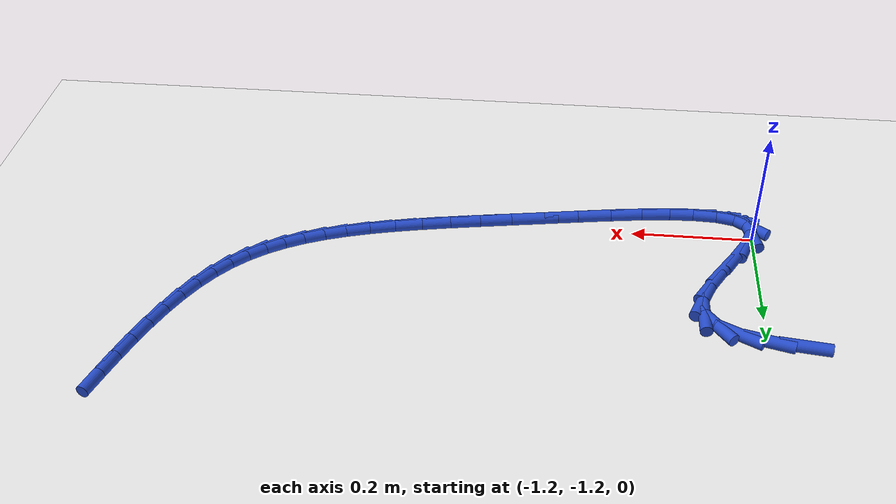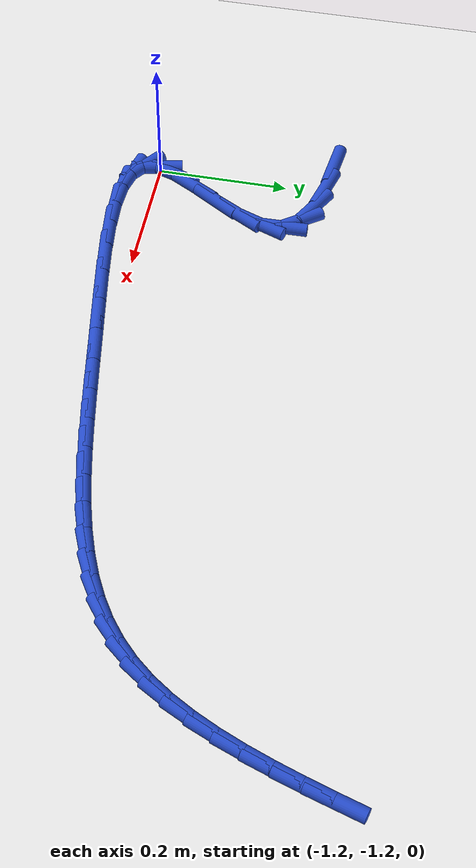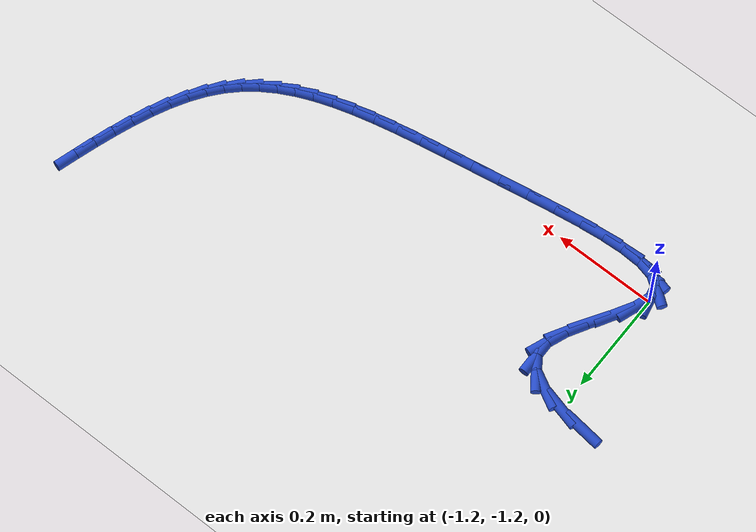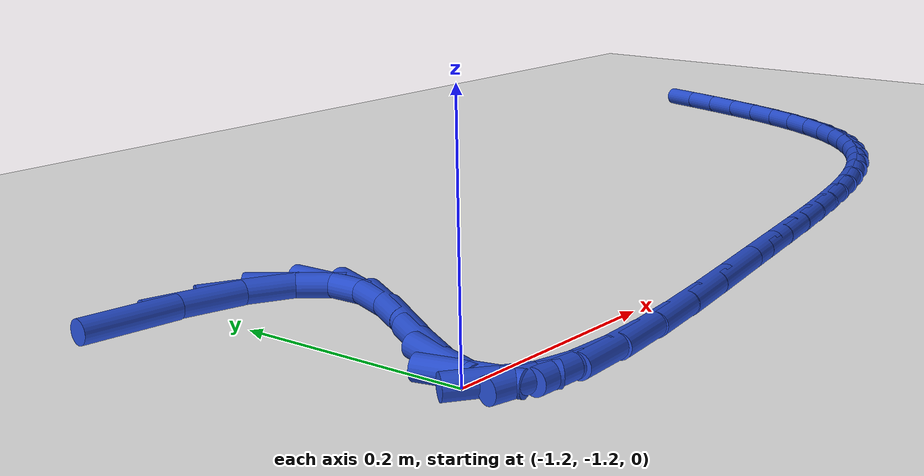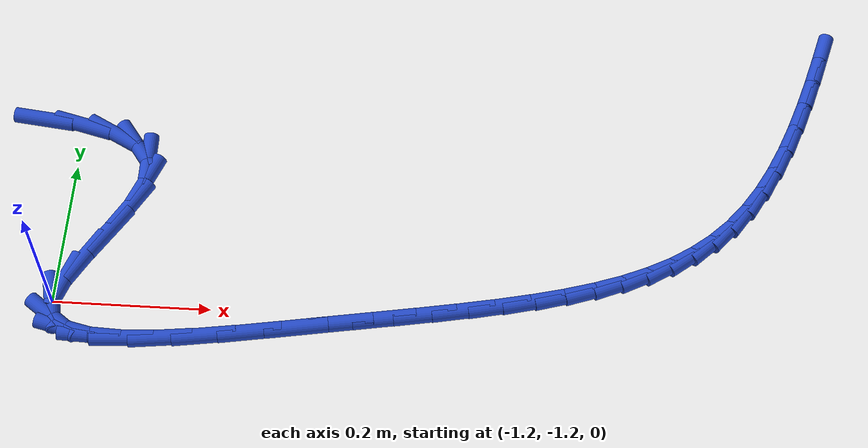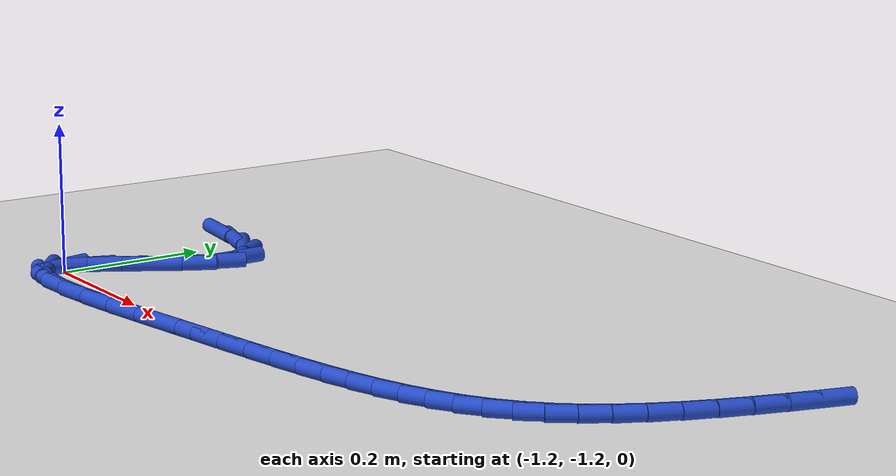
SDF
<sdf version="1.6">
 <world name="default">
  <model name="ground_plane">
   <static>1</static>
   <link name="link">
    <collision name="collision">
     <geometry><plane><normal>0 0 1</normal><size>100 100</size></plane></geometry>
     <surface><friction><ode><mu>100</mu><mu2>50</mu2></ode></friction></surface>
    </collision>
    <visual name="visual">
     <cast_shadows>0</cast_shadows>
     <geometry><plane><normal>0 0 1</normal><size>100 100</size></plane></geometry>
     <material>
      <script><uri>file://media/materials/scripts/gazebo.material</uri><name>Gazebo/WhiteGlow</name></script>
     </material>
    </visual>
   </link>
  </model>
  <model name="line">
   <link name="link_180">
    <pose>-1.2533675629987304 -0.9328533135267145 0.01 0 1.57 -0.12190783928671652</pose>
    <collision name="collision">
     <geometry><cylinder><radius>0.01</radius><length>0.08</length></cylinder></geometry>
    </collision>
    <visual name="visual">
     <material>
      <script><name>Gazebo/Blue</name><uri>file://media/materials/scripts/gazebo.material</uri></script>
     </material>
     <geometry><cylinder><radius>0.01</radius><length>0.08</length></cylinder></geometry>
    </visual>
   </link>
   <link name="link_181">
    <pose>-1.2003027696943875 -0.9393545659417527 0.01 0 1.57 -0.257885889110668</pose>
    <collision name="collision">
     <geometry><cylinder><radius>0.01</radius><length>0.08</length></cylinder></geometry>
    </collision>
    <visual name="visual">
     <material>
      <script><name>Gazebo/Blue</name><uri>file://media/materials/scripts/gazebo.material</uri></script>
     </material>
     <geometry><cylinder><radius>0.01</radius><length>0.08</length></cylinder></geometry>
    </visual>
   </link>
   <link name="link_182">
    <pose>-1.1564744180039892 -0.9509146920826306 0.01 0 1.57 -0.49729702409706683</pose>
    <collision name="collision">
     <geometry><cylinder><radius>0.01</radius><length>0.08</length></cylinder></geometry>
    </collision>
    <visual name="visual">
     <material>
      <script><name>Gazebo/Blue</name><uri>file://media/materials/scripts/gazebo.material</uri></script>
     </material>
     <geometry><cylinder><radius>0.01</radius><length>0.08</length></cylinder></geometry>
    </visual>
   </link>
   <link name="link_183">
    <pose>-1.1245278121155216 -0.9682552454455307 0.01 0 1.57 -0.9398217837265285</pose>
    <collision name="collision">
     <geometry><cylinder><radius>0.01</radius><length>0.08</length></cylinder></geometry>
    </collision>
    <visual name="visual">
     <material>
      <script><name>Gazebo/Blue</name><uri>file://media/materials/scripts/gazebo.material</uri></script>
     </material>
     <geometry><cylinder><radius>0.01</radius><length>0.08</length></cylinder></geometry>
    </visual>
   </link>
   <link name="link_184">
    <pose>-1.107108256216972 -0.9920977795266357 0.01 0 1.57 -1.5532439153242412</pose>
    <collision name="collision">
     <geometry><cylinder><radius>0.01</radius><length>0.08</length></cylinder></geometry>
    </collision>
    <visual name="visual">
     <material>
      <script><name>Gazebo/Blue</name><uri>file://media/materials/scripts/gazebo.material</uri></script>
     </material>
     <geometry><cylinder><radius>0.01</radius><length>0.08</length></cylinder></geometry>
    </visual>
   </link>
   <link name="link_185">
    <pose>-1.106565075965771 -1.0230407909002237 0.01 0 1.57 1.2067231483484882</pose>
    <collision name="collision">
     <geometry><cylinder><radius>0.01</radius><length>0.08</length></cylinder></geometry>
    </collision>
    <visual name="visual">
     <material>
      <script><name>Gazebo/Blue</name><uri>file://media/materials/scripts/gazebo.material</uri></script>
     </material>
     <geometry><cylinder><radius>0.01</radius><length>0.08</length></cylinder></geometry>
    </visual>
   </link>
   <link name="link_186">
    <pose>-1.1205449591974976 -1.0597275933301575 0.01 0 1.57 1.0553229329152607</pose>
    <collision name="collision">
     <geometry><cylinder><radius>0.01</radius><length>0.08</length></cylinder></geometry>
    </collision>
    <visual name="visual">
     <material>
      <script><name>Gazebo/Blue</name><uri>file://media/materials/scripts/gazebo.material</uri></script>
     </material>
     <geometry><cylinder><radius>0.01</radius><length>0.08</length></cylinder></geometry>
    </visual>
   </link>
   <link name="link_187">
    <pose>-1.142929074023011 -1.0992359368016433 0.01 0 1.57 1.0128997740647439</pose>
    <collision name="collision">
     <geometry><cylinder><radius>0.01</radius><length>0.08</length></cylinder></geometry>
    </collision>
    <visual name="visual">
     <material>
      <script><name>Gazebo/Blue</name><uri>file://media/materials/scripts/gazebo.material</uri></script>
     </material>
     <geometry><cylinder><radius>0.01</radius><length>0.08</length></cylinder></geometry>
    </visual>
   </link>
   <link name="link_188">
    <pose>-1.167492940210212 -1.1385996466278363 0.01 0 1.57 1.0557521923404205</pose>
    <collision name="collision">
     <geometry><cylinder><radius>0.01</radius><length>0.08</length></cylinder></geometry>
    </collision>
    <visual name="visual">
     <material>
      <script><name>Gazebo/Blue</name><uri>file://media/materials/scripts/gazebo.material</uri></script>
     </material>
     <geometry><cylinder><radius>0.01</radius><length>0.08</length></cylinder></geometry>
    </visual>
   </link>
   <link name="link_189">
    <pose>-1.1880120775270027 -1.174852548121891 0.01 0 1.57 1.2433510943347075</pose>
    <collision name="collision">
     <geometry><cylinder><radius>0.01</radius><length>0.08</length></cylinder></geometry>
    </collision>
    <visual name="visual">
     <material>
      <script><name>Gazebo/Blue</name><uri>file://media/materials/scripts/gazebo.material</uri></script>
     </material>
     <geometry><cylinder><radius>0.01</radius><length>0.08</length></cylinder></geometry>
    </visual>
   </link>
   <link name="link_190">
    <pose>-1.1982620203315397 -1.2050284736635912 0.01 0 1.57 -1.3571274032091365</pose>
    <collision name="collision">
     <geometry><cylinder><radius>0.01</radius><length>0.08</length></cylinder></geometry>
    </collision>
    <visual name="visual">
     <material>
      <script><name>Gazebo/Blue</name><uri>file://media/materials/scripts/gazebo.material</uri></script>
     </material>
     <geometry><cylinder><radius>0.01</radius><length>0.08</length></cylinder></geometry>
    </visual>
   </link>
   <link name="link_191">
    <pose>-1.19351890497021 -1.2268880555534678 0.01 0 1.57 -0.6400565404599076</pose>
    <collision name="collision">
     <geometry><cylinder><radius>0.01</radius><length>0.08</length></cylinder></geometry>
    </collision>
    <visual name="visual">
     <material>
      <script><name>Gazebo/Blue</name><uri>file://media/materials/scripts/gazebo.material</uri></script>
     </material>
     <geometry><cylinder><radius>0.01</radius><length>0.08</length></cylinder></geometry>
    </visual>
   </link>
   <link name="link_192">
    <pose>-1.1746813364542972 -1.2409151063971011 0.01 0 1.57 -0.2338191499713391</pose>
    <collision name="collision">
     <geometry><cylinder><radius>0.01</radius><length>0.08</length></cylinder></geometry>
    </collision>
    <visual name="visual">
     <material>
      <script><name>Gazebo/Blue</name><uri>file://media/materials/scripts/gazebo.material</uri></script>
     </material>
     <geometry><cylinder><radius>0.01</radius><length>0.08</length></cylinder></geometry>
    </visual>
   </link>
   <link name="link_193">
    <pose>-1.1439644929904023 -1.2482311064171454 0.01 0 1.57 -0.0427275508571133</pose>
    <collision name="collision">
     <geometry><cylinder><radius>0.01</radius><length>0.08</length></cylinder></geometry>
    </collision>
    <visual name="visual">
     <material>
      <script><name>Gazebo/Blue</name><uri>file://media/materials/scripts/gazebo.material</uri></script>
     </material>
     <geometry><cylinder><radius>0.01</radius><length>0.08</length></cylinder></geometry>
    </visual>
   </link>
   <link name="link_194">
    <pose>-1.1035835527851257 -1.2499575358362578 0.01 0 1.57 0.05725846090901333</pose>
    <collision name="collision">
     <geometry><cylinder><radius>0.01</radius><length>0.08</length></cylinder></geometry>
    </collision>
    <visual name="visual">
     <material>
      <script><name>Gazebo/Blue</name><uri>file://media/materials/scripts/gazebo.material</uri></script>
     </material>
     <geometry><cylinder><radius>0.01</radius><length>0.08</length></cylinder></geometry>
    </visual>
   </link>
   <link name="link_195">
    <pose>-1.0557536940450665 -1.2472158748770934 0.01 0 1.57 0.11423583260447846</pose>
    <collision name="collision">
     <geometry><cylinder><radius>0.01</radius><length>0.08</length></cylinder></geometry>
    </collision>
    <visual name="visual">
     <material>
      <script><name>Gazebo/Blue</name><uri>file://media/materials/scripts/gazebo.material</uri></script>
     </material>
     <geometry><cylinder><radius>0.01</radius><length>0.08</length></cylinder></geometry>
    </visual>
   </link>
   <link name="link_196">
    <pose>-1.0026900949768258 -1.241127603762309 0.01 0 1.57 0.1471644206182594</pose>
    <collision name="collision">
     <geometry><cylinder><radius>0.01</radius><length>0.08</length></cylinder></geometry>
    </collision>
    <visual name="visual">
     <material>
      <script><name>Gazebo/Blue</name><uri>file://media/materials/scripts/gazebo.material</uri></script>
     </material>
     <geometry><cylinder><radius>0.01</radius><length>0.08</length></cylinder></geometry>
    </visual>
   </link>
   <link name="link_197">
    <pose>-0.9466079337870035 -1.2328142027145594 0.01 0 1.57 0.1640559848797582</pose>
    <collision name="collision">
     <geometry><cylinder><radius>0.01</radius><length>0.08</length></cylinder></geometry>
    </collision>
    <visual name="visual">
     <material>
      <script><name>Gazebo/Blue</name><uri>file://media/materials/scripts/gazebo.material</uri></script>
     </material>
     <geometry><cylinder><radius>0.01</radius><length>0.08</length></cylinder></geometry>
    </visual>
   </link>
   <link name="link_198">
    <pose>-0.8897223886821999 -1.223397151956502 0.01 0 1.57 0.1680014454018245</pose>
    <collision name="collision">
     <geometry><cylinder><radius>0.01</radius><length>0.08</length></cylinder></geometry>
    </collision>
    <visual name="visual">
     <material>
      <script><name>Gazebo/Blue</name><uri>file://media/materials/scripts/gazebo.material</uri></script>
     </material>
     <geometry><cylinder><radius>0.01</radius><length>0.08</length></cylinder></geometry>
    </visual>
   </link>
   <link name="link_199">
    <pose>-0.8342281854001542 -1.2139853305908435 0.01 0 1.57 0.16613837791403366</pose>
    <collision name="collision">
     <geometry><cylinder><radius>0.01</radius><length>0.08</length></cylinder></geometry>
    </collision>
    <visual name="visual">
     <material>
      <script><name>Gazebo/Blue</name><uri>file://media/materials/scripts/gazebo.material</uri></script>
     </material>
     <geometry><cylinder><radius>0.01</radius><length>0.08</length></cylinder></geometry>
    </visual>
   </link>
   <link name="link_200">
    <pose>-0.7814136665376692 -1.205129179384313 0.01 0 1.57 0.16843056761627487</pose>
    <collision name="collision">
     <geometry><cylinder><radius>0.01</radius><length>0.08</length></cylinder></geometry>
    </collision>
    <visual name="visual">
     <material>
      <script><name>Gazebo/Blue</name><uri>file://media/materials/scripts/gazebo.material</uri></script>
     </material>
     <geometry><cylinder><radius>0.01</radius><length>0.08</length></cylinder></geometry>
    </visual>
   </link>
   <link name="link_201">
    <pose>-0.7313209864935383 -1.1966113409924553 0.01 0 1.57 0.17640156764190176</pose>
    <collision name="collision">
     <geometry><cylinder><radius>0.01</radius><length>0.08</length></cylinder></geometry>
    </collision>
    <visual name="visual">
     <material>
      <script><name>Gazebo/Blue</name><uri>file://media/materials/scripts/gazebo.material</uri></script>
     </material>
     <geometry><cylinder><radius>0.01</radius><length>0.08</length></cylinder></geometry>
    </visual>
   </link>
   <link name="link_202">
    <pose>-0.6839017192650594 -1.1881586499181747 0.01 0 1.57 0.19098752901813754</pose>
    <collision name="collision">
     <geometry><cylinder><radius>0.01</radius><length>0.08</length></cylinder></geometry>
    </collision>
    <visual name="visual">
     <material>
      <script><name>Gazebo/Blue</name><uri>file://media/materials/scripts/gazebo.material</uri></script>
     </material>
     <geometry><cylinder><radius>0.01</radius><length>0.08</length></cylinder></geometry>
    </visual>
   </link>
   <link name="link_203">
    <pose>-0.6391074388495315 -1.1794979406643737 0.01 0 1.57 0.21324918888726385</pose>
    <collision name="collision">
     <geometry><cylinder><radius>0.01</radius><length>0.08</length></cylinder></geometry>
    </collision>
    <visual name="visual">
     <material>
      <script><name>Gazebo/Blue</name><uri>file://media/materials/scripts/gazebo.material</uri></script>
     </material>
     <geometry><cylinder><radius>0.01</radius><length>0.08</length></cylinder></geometry>
    </visual>
   </link>
   <link name="link_204">
    <pose>-0.5968897192442542 -1.1703560477339574 0.01 0 1.57 0.24435836353587995</pose>
    <collision name="collision">
     <geometry><cylinder><radius>0.01</radius><length>0.08</length></cylinder></geometry>
    </collision>
    <visual name="visual">
     <material>
      <script><name>Gazebo/Blue</name><uri>file://media/materials/scripts/gazebo.material</uri></script>
     </material>
     <geometry><cylinder><radius>0.01</radius><length>0.08</length></cylinder></geometry>
    </visual>
   </link>
   <link name="link_205">
    <pose>-0.5572001344465268 -1.1604598056298288 0.01 0 1.57 0.285548645645241</pose>
    <collision name="collision">
     <geometry><cylinder><radius>0.01</radius><length>0.08</length></cylinder></geometry>
    </collision>
    <visual name="visual">
     <material>
      <script><name>Gazebo/Blue</name><uri>file://media/materials/scripts/gazebo.material</uri></script>
     </material>
     <geometry><cylinder><radius>0.01</radius><length>0.08</length></cylinder></geometry>
    </visual>
   </link>
   <link name="link_206">
    <pose>-0.519990258453649 -1.1495360488548922 0.01 0 1.57 0.3380043915814443</pose>
    <collision name="collision">
     <geometry><cylinder><radius>0.01</radius><length>0.08</length></cylinder></geometry>
    </collision>
    <visual name="visual">
     <material>
      <script><name>Gazebo/Blue</name><uri>file://media/materials/scripts/gazebo.material</uri></script>
     </material>
     <geometry><cylinder><radius>0.01</radius><length>0.08</length></cylinder></geometry>
    </visual>
   </link>
   <link name="link_207">
    <pose>-0.48521166526291976 -1.1373116119120503 0.01 0 1.57 0.40265722951647753</pose>
    <collision name="collision">
     <geometry><cylinder><radius>0.01</radius><length>0.08</length></cylinder></geometry>
    </collision>
    <visual name="visual">
     <material>
      <script><name>Gazebo/Blue</name><uri>file://media/materials/scripts/gazebo.material</uri></script>
     </material>
     <geometry><cylinder><radius>0.01</radius><length>0.08</length></cylinder></geometry>
    </visual>
   </link>
   <link name="link_208">
    <pose>-0.45281592887163796 -1.1235133293042079 0.01 0 1.57 0.47987049522784075</pose>
    <collision name="collision">
     <geometry><cylinder><radius>0.01</radius><length>0.08</length></cylinder></geometry>
    </collision>
    <visual name="visual">
     <material>
      <script><name>Gazebo/Blue</name><uri>file://media/materials/scripts/gazebo.material</uri></script>
     </material>
     <geometry><cylinder><radius>0.01</radius><length>0.08</length></cylinder></geometry>
    </visual>
   </link>
   <link name="link_209">
    <pose>-0.42275462327710445 -1.1078680355342685 0.01 0 1.57 0.5690392856819404</pose>
    <collision name="collision">
     <geometry><cylinder><radius>0.01</radius><length>0.08</length></cylinder></geometry>
    </collision>
    <visual name="visual">
     <material>
      <script><name>Gazebo/Blue</name><uri>file://media/materials/scripts/gazebo.material</uri></script>
     </material>
     <geometry><cylinder><radius>0.01</radius><length>0.08</length></cylinder></geometry>
    </visual>
   </link>
   <link name="link_210">
    <pose>-0.39497932247661777 -1.0901025651051357 0.01 0 1.57 0.6682279776406687</pose>
    <collision name="collision">
     <geometry><cylinder><radius>0.01</radius><length>0.08</length></cylinder></geometry>
    </collision>
    <visual name="visual">
     <material>
      <script><name>Gazebo/Blue</name><uri>file://media/materials/scripts/gazebo.material</uri></script>
     </material>
     <geometry><cylinder><radius>0.01</radius><length>0.08</length></cylinder></geometry>
    </visual>
   </link>
   <link name="link_211">
    <pose>-0.36944160046747737 -1.0699437525197133 0.01 0 1.57 0.7740665083983044</pose>
    <collision name="collision">
     <geometry><cylinder><radius>0.01</radius><length>0.08</length></cylinder></geometry>
    </collision>
    <visual name="visual">
     <material>
      <script><name>Gazebo/Blue</name><uri>file://media/materials/scripts/gazebo.material</uri></script>
     </material>
     <geometry><cylinder><radius>0.01</radius><length>0.08</length></cylinder></geometry>
    </visual>
   </link>
   <link name="link_212">
    <pose>-0.34609303124698265 -1.0471184322809053 0.01 0 1.57 0.881680297566933</pose>
    <collision name="collision">
     <geometry><cylinder><radius>0.01</radius><length>0.08</length></cylinder></geometry>
    </collision>
    <visual name="visual">
     <material>
      <script><name>Gazebo/Blue</name><uri>file://media/materials/scripts/gazebo.material</uri></script>
     </material>
     <geometry><cylinder><radius>0.01</radius><length>0.08</length></cylinder></geometry>
    </visual>
   </link>
   <link name="link_213">
    <pose>-0.32488000185802735 -1.0213698109067446 0.01 0 1.57 0.9795274159001683</pose>
    <collision name="collision">
     <geometry><cylinder><radius>0.01</radius><length>0.08</length></cylinder></geometry>
    </collision>
    <visual name="visual">
     <material>
      <script><name>Gazebo/Blue</name><uri>file://media/materials/scripts/gazebo.material</uri></script>
     </material>
     <geometry><cylinder><radius>0.01</radius><length>0.08</length></cylinder></geometry>
    </visual>
   </link>
   <link name="link_214">
    <pose>-0.3056554478030314 -0.9927360637765672 0.01 0 1.57 1.060840626011732</pose>
    <collision name="collision">
     <geometry><cylinder><radius>0.01</radius><length>0.08</length></cylinder></geometry>
    </collision>
    <visual name="visual">
     <material>
      <script><name>Gazebo/Blue</name><uri>file://media/materials/scripts/gazebo.material</uri></script>
     </material>
     <geometry><cylinder><radius>0.01</radius><length>0.08</length></cylinder></geometry>
    </visual>
   </link>
   <link name="link_215">
    <pose>-0.2881912923859585 -0.9615110718023105 0.01 0 1.57 1.1269726409780405</pose>
    <collision name="collision">
     <geometry><cylinder><radius>0.01</radius><length>0.08</length></cylinder></geometry>
    </collision>
    <visual name="visual">
     <material>
      <script><name>Gazebo/Blue</name><uri>file://media/materials/scripts/gazebo.material</uri></script>
     </material>
     <geometry><cylinder><radius>0.01</radius><length>0.08</length></cylinder></geometry>
    </visual>
   </link>
   <link name="link_216">
    <pose>-0.27225677574868495 -0.927997184983341 0.01 0 1.57 1.1797603340518856</pose>
    <collision name="collision">
     <geometry><cylinder><radius>0.01</radius><length>0.08</length></cylinder></geometry>
    </collision>
    <visual name="visual">
     <material>
      <script><name>Gazebo/Blue</name><uri>file://media/materials/scripts/gazebo.material</uri></script>
     </material>
     <geometry><cylinder><radius>0.01</radius><length>0.08</length></cylinder></geometry>
    </visual>
   </link>
   <link name="link_217">
    <pose>-0.25762113803308495 -0.8924967533190211 0.01 0 1.57 1.2209370480528245</pose>
    <collision name="collision">
     <geometry><cylinder><radius>0.01</radius><length>0.08</length></cylinder></geometry>
    </collision>
    <visual name="visual">
     <material>
      <script><name>Gazebo/Blue</name><uri>file://media/materials/scripts/gazebo.material</uri></script>
     </material>
     <geometry><cylinder><radius>0.01</radius><length>0.08</length></cylinder></geometry>
    </visual>
   </link>
   <link name="link_218">
    <pose>-0.2440536193810336 -0.8553121268087152 0.01 0 1.57 1.251973384260117</pose>
    <collision name="collision">
     <geometry><cylinder><radius>0.01</radius><length>0.08</length></cylinder></geometry>
    </collision>
    <visual name="visual">
     <material>
      <script><name>Gazebo/Blue</name><uri>file://media/materials/scripts/gazebo.material</uri></script>
     </material>
     <geometry><cylinder><radius>0.01</radius><length>0.08</length></cylinder></geometry>
    </visual>
   </link>
   <link name="link_219">
    <pose>-0.23132345993440587 -0.8167456554517869 0.01 0 1.57 1.2740310301795938</pose>
    <collision name="collision">
     <geometry><cylinder><radius>0.01</radius><length>0.08</length></cylinder></geometry>
    </collision>
    <visual name="visual">
     <material>
      <script><name>Gazebo/Blue</name><uri>file://media/materials/scripts/gazebo.material</uri></script>
     </material>
     <geometry><cylinder><radius>0.01</radius><length>0.08</length></cylinder></geometry>
    </visual>
   </link>
   <link name="link_220">
    <pose>-0.2191998998350768 -0.7770996892476008 0.01 0 1.57 1.287968098724911</pose>
    <collision name="collision">
     <geometry><cylinder><radius>0.01</radius><length>0.08</length></cylinder></geometry>
    </collision>
    <visual name="visual">
     <material>
      <script><name>Gazebo/Blue</name><uri>file://media/materials/scripts/gazebo.material</uri></script>
     </material>
     <geometry><cylinder><radius>0.01</radius><length>0.08</length></cylinder></geometry>
    </visual>
   </link>
  </model>
 </world>
</sdf>
